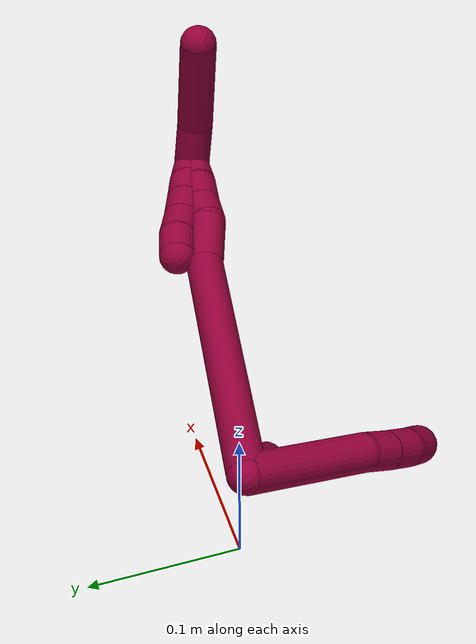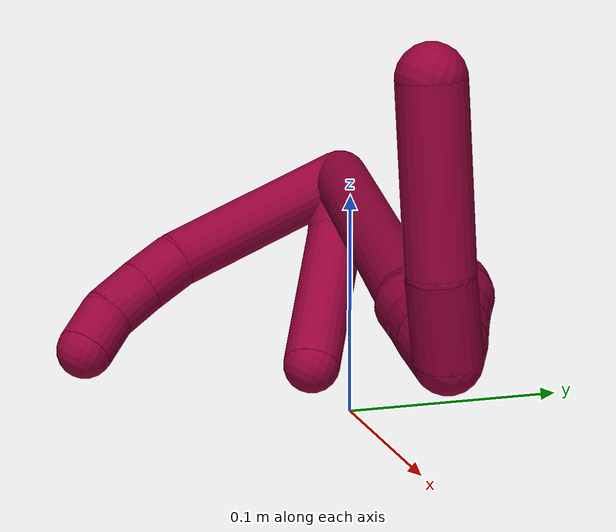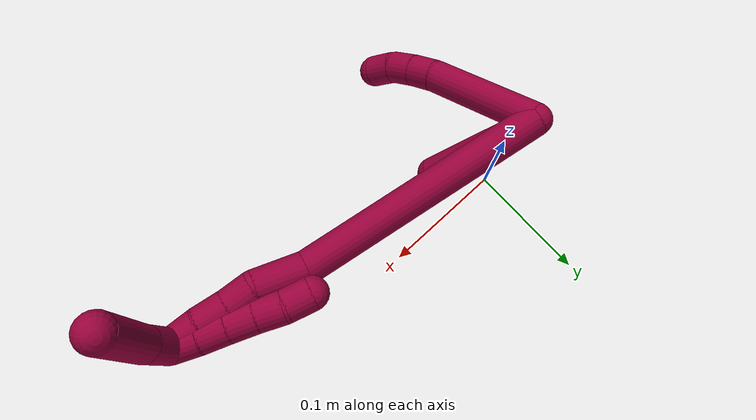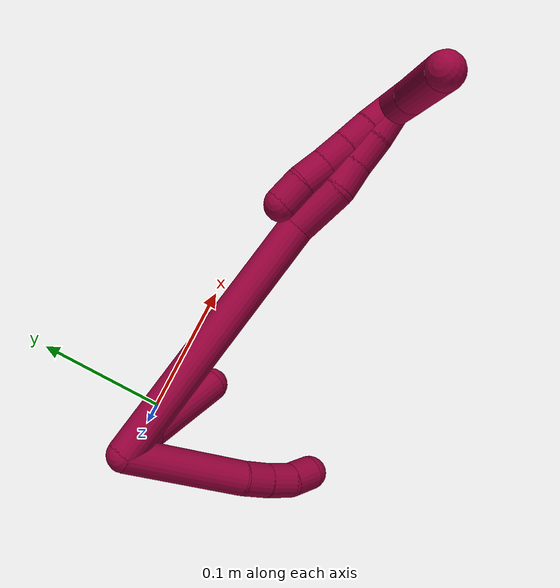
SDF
<sdf version="1.7">
 <world name="default">
  <model name="8">
   <static>0</static>
   <link name="8">
    <collision name="collision-cylinder-e_1_2_8">
     <pose>0.010499 -0.027687 -0.033167 2.446 0.238395 0.638137</pose>
     <geometry><cylinder><radius>0.0125</radius><length>0.088925</length></cylinder></geometry>
     <surface>
      <friction><ode><mu>1.16</mu><mu2>1.16</mu2><slip1>0</slip1><slip2>0</slip2></ode></friction>
      <contact><ode><kp>1e+06</kp><kd>1</kd><max_vel>0</max_vel><min_depth>0.001</min_depth></ode></contact>
     </surface>
    </collision>
    <visual name="visual-cylinder-e_1_2_8">
     <pose>0.010499 -0.027687 -0.033167 2.446 0.238395 0.638137</pose>
     <geometry><cylinder><radius>0.0125</radius><length>0.088925</length></cylinder></geometry>
     <material><ambient>0.584314 0 0.227451 1</ambient></material>
    </visual>
    <collision name="collision-cylinder-e_2_8_9">
     <pose>0.023499 -0.060251 -0.074873 2.62269 0.248978 0.881079</pose>
     <geometry><cylinder><radius>0.0125</radius><length>0.020291</length></cylinder></geometry>
     <surface>
      <friction><ode><mu>1.16</mu><mu2>1.16</mu2><slip1>0</slip1><slip2>0</slip2></ode></friction>
      <contact><ode><kp>1e+06</kp><kd>1</kd><max_vel>0</max_vel><min_depth>0.001</min_depth></ode></contact>
     </surface>
    </collision>
    <visual name="visual-cylinder-e_2_8_9">
     <pose>0.023499 -0.060251 -0.074873 2.62269 0.248978 0.881079</pose>
     <geometry><cylinder><radius>0.0125</radius><length>0.020291</length></cylinder></geometry>
     <material><ambient>0.584314 0 0.227451 1</ambient></material>
    </visual>
    <collision name="collision-cylinder-e_3_9_10">
     <pose>0.029199 -0.069596 -0.092058 2.66458 0.317692 1.16519</pose>
     <geometry><cylinder><radius>0.0125</radius><length>0.020491</length></cylinder></geometry>
     <surface>
      <friction><ode><mu>1.16</mu><mu2>1.16</mu2><slip1>0</slip1><slip2>0</slip2></ode></friction>
      <contact><ode><kp>1e+06</kp><kd>1</kd><max_vel>0</max_vel><min_depth>0.001</min_depth></ode></contact>
     </surface>
    </collision>
    <visual name="visual-cylinder-e_3_9_10">
     <pose>0.029199 -0.069596 -0.092058 2.66458 0.317692 1.16519</pose>
     <geometry><cylinder><radius>0.0125</radius><length>0.020491</length></cylinder></geometry>
     <material><ambient>0.584314 0 0.227451 1</ambient></material>
    </visual>
    <collision name="collision-cylinder-e_4_10_6">
     <pose>0.03703 -0.075899 -0.109544 2.93704 0.473895 2.33783</pose>
     <geometry><cylinder><radius>0.0125</radius><length>0.020293</length></cylinder></geometry>
     <surface>
      <friction><ode><mu>1.16</mu><mu2>1.16</mu2><slip1>0</slip1><slip2>0</slip2></ode></friction>
      <contact><ode><kp>1e+06</kp><kd>1</kd><max_vel>0</max_vel><min_depth>0.001</min_depth></ode></contact>
     </surface>
    </collision>
    <visual name="visual-cylinder-e_4_10_6">
     <pose>0.03703 -0.075899 -0.109544 2.93704 0.473895 2.33783</pose>
     <geometry><cylinder><radius>0.0125</radius><length>0.020293</length></cylinder></geometry>
     <material><ambient>0.584314 0 0.227451 1</ambient></material>
    </visual>
    <collision name="collision-cylinder-e_1_2_11">
     <pose>0.007537 0.00308 -0.012526 -2.90046 0.528761 -2.30001</pose>
     <geometry><cylinder><radius>0.0125</radius><length>0.029879</length></cylinder></geometry>
     <surface>
      <friction><ode><mu>1.16</mu><mu2>1.16</mu2><slip1>0</slip1><slip2>0</slip2></ode></friction>
      <contact><ode><kp>1e+06</kp><kd>1</kd><max_vel>0</max_vel><min_depth>0.001</min_depth></ode></contact>
     </surface>
    </collision>
    <visual name="visual-cylinder-e_1_2_11">
     <pose>0.007537 0.00308 -0.012526 -2.90046 0.528761 -2.30001</pose>
     <geometry><cylinder><radius>0.0125</radius><length>0.029879</length></cylinder></geometry>
     <material><ambient>0.584314 0 0.227451 1</ambient></material>
    </visual>
    <collision name="collision-cylinder-e_2_11_5">
     <pose>0.035495 0.009392 -0.053367 -3.02796 0.621788 -2.79119</pose>
     <geometry><cylinder><radius>0.0125</radius><length>0.070121</length></cylinder></geometry>
     <surface>
      <friction><ode><mu>1.16</mu><mu2>1.16</mu2><slip1>0</slip1><slip2>0</slip2></ode></friction>
      <contact><ode><kp>1e+06</kp><kd>1</kd><max_vel>0</max_vel><min_depth>0.001</min_depth></ode></contact>
     </surface>
    </collision>
    <visual name="visual-cylinder-e_2_11_5">
     <pose>0.035495 0.009392 -0.053367 -3.02796 0.621788 -2.79119</pose>
     <geometry><cylinder><radius>0.0125</radius><length>0.070121</length></cylinder></geometry>
     <material><ambient>0.584314 0 0.227451 1</ambient></material>
    </visual>
    <collision name="collision-cylinder-e_1_2_12">
     <pose>0.095578 0.00176 -0.020187 -3.05462 1.36188 -3.03429</pose>
     <geometry><cylinder><radius>0.0125</radius><length>0.195404</length></cylinder></geometry>
     <surface>
      <friction><ode><mu>1.16</mu><mu2>1.16</mu2><slip1>0</slip1><slip2>0</slip2></ode></friction>
      <contact><ode><kp>1e+06</kp><kd>1</kd><max_vel>0</max_vel><min_depth>0.001</min_depth></ode></contact>
     </surface>
    </collision>
    <visual name="visual-cylinder-e_1_2_12">
     <pose>0.095578 0.00176 -0.020187 -3.05462 1.36188 -3.03429</pose>
     <geometry><cylinder><radius>0.0125</radius><length>0.195404</length></cylinder></geometry>
     <material><ambient>0.584314 0 0.227451 1</ambient></material>
    </visual>
    <collision name="collision-cylinder-e_2_12_13">
     <pose>0.209439 -0.001018 -0.042027 1.92019 1.31254 1.6662</pose>
     <geometry><cylinder><radius>0.0125</radius><length>0.037822</length></cylinder></geometry>
     <surface>
      <friction><ode><mu>1.16</mu><mu2>1.16</mu2><slip1>0</slip1><slip2>0</slip2></ode></friction>
      <contact><ode><kp>1e+06</kp><kd>1</kd><max_vel>0</max_vel><min_depth>0.001</min_depth></ode></contact>
     </surface>
    </collision>
    <visual name="visual-cylinder-e_2_12_13">
     <pose>0.209439 -0.001018 -0.042027 1.92019 1.31254 1.6662</pose>
     <geometry><cylinder><radius>0.0125</radius><length>0.037822</length></cylinder></geometry>
     <material><ambient>0.584314 0 0.227451 1</ambient></material>
    </visual>
    <collision name="collision-cylinder-e_3_13_14">
     <pose>0.237961 -0.004744 -0.045629 -2.747 1.3675 -2.66048</pose>
     <geometry><cylinder><radius>0.0125</radius><length>0.020907</length></cylinder></geometry>
     <surface>
      <friction><ode><mu>1.16</mu><mu2>1.16</mu2><slip1>0</slip1><slip2>0</slip2></ode></friction>
      <contact><ode><kp>1e+06</kp><kd>1</kd><max_vel>0</max_vel><min_depth>0.001</min_depth></ode></contact>
     </surface>
    </collision>
    <visual name="visual-cylinder-e_3_13_14">
     <pose>0.237961 -0.004744 -0.045629 -2.747 1.3675 -2.66048</pose>
     <geometry><cylinder><radius>0.0125</radius><length>0.020907</length></cylinder></geometry>
     <material><ambient>0.584314 0 0.227451 1</ambient></material>
    </visual>
    <collision name="collision-cylinder-e_4_14_15">
     <pose>0.259208 -0.003995 -0.049486 3.10937 1.399 3.1033</pose>
     <geometry><cylinder><radius>0.0125</radius><length>0.022346</length></cylinder></geometry>
     <surface>
      <friction><ode><mu>1.16</mu><mu2>1.16</mu2><slip1>0</slip1><slip2>0</slip2></ode></friction>
      <contact><ode><kp>1e+06</kp><kd>1</kd><max_vel>0</max_vel><min_depth>0.001</min_depth></ode></contact>
     </surface>
    </collision>
    <visual name="visual-cylinder-e_4_14_15">
     <pose>0.259208 -0.003995 -0.049486 3.10937 1.399 3.1033</pose>
     <geometry><cylinder><radius>0.0125</radius><length>0.022346</length></cylinder></geometry>
     <material><ambient>0.584314 0 0.227451 1</ambient></material>
    </visual>
    <collision name="collision-cylinder-e_5_15_1">
     <pose>0.281685 -0.002885 -0.053722 -2.67525 1.34748 -2.56332</pose>
     <geometry><cylinder><radius>0.0125</radius><length>0.023521</length></cylinder></geometry>
     <surface>
      <friction><ode><mu>1.16</mu><mu2>1.16</mu2><slip1>0</slip1><slip2>0</slip2></ode></friction>
      <contact><ode><kp>1e+06</kp><kd>1</kd><max_vel>0</max_vel><min_depth>0.001</min_depth></ode></contact>
     </surface>
    </collision>
    <visual name="visual-cylinder-e_5_15_1">
     <pose>0.281685 -0.002885 -0.053722 -2.67525 1.34748 -2.56332</pose>
     <geometry><cylinder><radius>0.0125</radius><length>0.023521</length></cylinder></geometry>
     <material><ambient>0.584314 0 0.227451 1</ambient></material>
    </visual>
    <collision name="collision-cylinder-e_1_1_16">
     <pose>0.283943 0.000374 -0.052761 -0.56601 -1.17079 0.380888</pose>
     <geometry><cylinder><radius>0.0125</radius><length>0.02</length></cylinder></geometry>
     <surface>
      <friction><ode><mu>1.16</mu><mu2>1.16</mu2><slip1>0</slip1><slip2>0</slip2></ode></friction>
      <contact><ode><kp>1e+06</kp><kd>1</kd><max_vel>0</max_vel><min_depth>0.001</min_depth></ode></contact>
     </surface>
    </collision>
    <visual name="visual-cylinder-e_1_1_16">
     <pose>0.283943 0.000374 -0.052761 -0.56601 -1.17079 0.380888</pose>
     <geometry><cylinder><radius>0.0125</radius><length>0.02</length></cylinder></geometry>
     <material><ambient>0.584314 0 0.227451 1</ambient></material>
    </visual>
    <collision name="collision-cylinder-e_2_16_17">
     <pose>0.265296 0.004179 -0.046644 -0.544989 -1.23341 0.391161</pose>
     <geometry><cylinder><radius>0.0125</radius><length>0.02</length></cylinder></geometry>
     <surface>
      <friction><ode><mu>1.16</mu><mu2>1.16</mu2><slip1>0</slip1><slip2>0</slip2></ode></friction>
      <contact><ode><kp>1e+06</kp><kd>1</kd><max_vel>0</max_vel><min_depth>0.001</min_depth></ode></contact>
     </surface>
    </collision>
    <visual name="visual-cylinder-e_2_16_17">
     <pose>0.265296 0.004179 -0.046644 -0.544989 -1.23341 0.391161</pose>
     <geometry><cylinder><radius>0.0125</radius><length>0.02</length></cylinder></geometry>
     <material><ambient>0.584314 0 0.227451 1</ambient></material>
    </visual>
    <collision name="collision-cylinder-e_3_17_18">
     <pose>0.246443 0.007841 -0.041068 -0.616865 -1.22761 0.441647</pose>
     <geometry><cylinder><radius>0.0125</radius><length>0.02</length></cylinder></geometry>
     <surface>
      <friction><ode><mu>1.16</mu><mu2>1.16</mu2><slip1>0</slip1><slip2>0</slip2></ode></friction>
      <contact><ode><kp>1e+06</kp><kd>1</kd><max_vel>0</max_vel><min_depth>0.001</min_depth></ode></contact>
     </surface>
    </collision>
    <visual name="visual-cylinder-e_3_17_18">
     <pose>0.246443 0.007841 -0.041068 -0.616865 -1.22761 0.441647</pose>
     <geometry><cylinder><radius>0.0125</radius><length>0.02</length></cylinder></geometry>
     <material><ambient>0.584314 0 0.227451 1</ambient></material>
    </visual>
    <collision name="collision-cylinder-e_4_18_19">
     <pose>0.227839 0.011904 -0.034989 -0.565393 -1.16478 0.378042</pose>
     <geometry><cylinder><radius>0.0125</radius><length>0.02</length></cylinder></geometry>
     <surface>
      <friction><ode><mu>1.16</mu><mu2>1.16</mu2><slip1>0</slip1><slip2>0</slip2></ode></friction>
      <contact><ode><kp>1e+06</kp><kd>1</kd><max_vel>0</max_vel><min_depth>0.001</min_depth></ode></contact>
     </surface>
    </collision>
    <visual name="visual-cylinder-e_4_18_19">
     <pose>0.227839 0.011904 -0.034989 -0.565393 -1.16478 0.378042</pose>
     <geometry><cylinder><radius>0.0125</radius><length>0.02</length></cylinder></geometry>
     <material><ambient>0.584314 0 0.227451 1</ambient></material>
    </visual>
    <collision name="collision-cylinder-e_5_19_4">
     <pose>0.208878 0.01532 -0.029989 -0.663075 -1.35795 0.541924</pose>
     <geometry><cylinder><radius>0.0125</radius><length>0.02</length></cylinder></geometry>
     <surface>
      <friction><ode><mu>1.16</mu><mu2>1.16</mu2><slip1>0</slip1><slip2>0</slip2></ode></friction>
      <contact><ode><kp>1e+06</kp><kd>1</kd><max_vel>0</max_vel><min_depth>0.001</min_depth></ode></contact>
     </surface>
    </collision>
    <visual name="visual-cylinder-e_5_19_4">
     <pose>0.208878 0.01532 -0.029989 -0.663075 -1.35795 0.541924</pose>
     <geometry><cylinder><radius>0.0125</radius><length>0.02</length></cylinder></geometry>
     <material><ambient>0.584314 0 0.227451 1</ambient></material>
    </visual>
    <collision name="collision-cylinder-e_1_1_20">
     <pose>0.298295 -0.010936 -0.043544 0.635467 0.319566 0.105902</pose>
     <geometry><cylinder><radius>0.0125</radius><length>0.032731</length></cylinder></geometry>
     <surface>
      <friction><ode><mu>1.16</mu><mu2>1.16</mu2><slip1>0</slip1><slip2>0</slip2></ode></friction>
      <contact><ode><kp>1e+06</kp><kd>1</kd><max_vel>0</max_vel><min_depth>0.001</min_depth></ode></contact>
     </surface>
    </collision>
    <visual name="visual-cylinder-e_1_1_20">
     <pose>0.298295 -0.010936 -0.043544 0.635467 0.319566 0.105902</pose>
     <geometry><cylinder><radius>0.0125</radius><length>0.032731</length></cylinder></geometry>
     <material><ambient>0.584314 0 0.227451 1</ambient></material>
    </visual>
    <collision name="collision-cylinder-e_2_20_3">
     <pose>0.308646 -0.037576 -0.002742 0.551748 0.155534 0.044112</pose>
     <geometry><cylinder><radius>0.0125</radius><length>0.067269</length></cylinder></geometry>
     <surface>
      <friction><ode><mu>1.16</mu><mu2>1.16</mu2><slip1>0</slip1><slip2>0</slip2></ode></friction>
      <contact><ode><kp>1e+06</kp><kd>1</kd><max_vel>0</max_vel><min_depth>0.001</min_depth></ode></contact>
     </surface>
    </collision>
    <visual name="visual-cylinder-e_2_20_3">
     <pose>0.308646 -0.037576 -0.002742 0.551748 0.155534 0.044112</pose>
     <geometry><cylinder><radius>0.0125</radius><length>0.067269</length></cylinder></geometry>
     <material><ambient>0.584314 0 0.227451 1</ambient></material>
    </visual>
    <collision name="collision-sphere-3">
     <pose>0.313856 -0.054993 0.025555 0 -0 0</pose>
     <geometry><sphere><radius>0.0125</radius></sphere></geometry>
     <surface>
      <friction><ode><mu>1.16</mu><mu2>1.16</mu2><slip1>0</slip1><slip2>0</slip2></ode></friction>
      <contact><ode><kp>1e+06</kp><kd>1</kd><max_vel>0</max_vel><min_depth>0.001</min_depth></ode></contact>
     </surface>
    </collision>
    <visual name="visual-sphere-3">
     <pose>0.313856 -0.054993 0.025555 0 -0 0</pose>
     <geometry><sphere><radius>0.0125</radius></sphere></geometry>
     <material><ambient>0.584314 0 0.227451 1</ambient></material>
    </visual>
    <collision name="collision-sphere-20">
     <pose>0.303436 -0.020158 -0.03104 0 -0 0</pose>
     <geometry><sphere><radius>0.0125</radius></sphere></geometry>
     <surface>
      <friction><ode><mu>1.16</mu><mu2>1.16</mu2><slip1>0</slip1><slip2>0</slip2></ode></friction>
      <contact><ode><kp>1e+06</kp><kd>1</kd><max_vel>0</max_vel><min_depth>0.001</min_depth></ode></contact>
     </surface>
    </collision>
    <visual name="visual-sphere-20">
     <pose>0.303436 -0.020158 -0.03104 0 -0 0</pose>
     <geometry><sphere><radius>0.0125</radius></sphere></geometry>
     <material><ambient>0.584314 0 0.227451 1</ambient></material>
    </visual>
    <collision name="collision-sphere-4">
     <pose>0.199103 0.01662 -0.028324 0 -0 0</pose>
     <geometry><sphere><radius>0.0125</radius></sphere></geometry>
     <surface>
      <friction><ode><mu>1.16</mu><mu2>1.16</mu2><slip1>0</slip1><slip2>0</slip2></ode></friction>
      <contact><ode><kp>1e+06</kp><kd>1</kd><max_vel>0</max_vel><min_depth>0.001</min_depth></ode></contact>
     </surface>
    </collision>
    <visual name="visual-sphere-4">
     <pose>0.199103 0.01662 -0.028324 0 -0 0</pose>
     <geometry><sphere><radius>0.0125</radius></sphere></geometry>
     <material><ambient>0.584314 0 0.227451 1</ambient></material>
    </visual>
    <collision name="collision-sphere-11">
     <pose>0.015073 0.006161 -0.025052 0 -0 0</pose>
     <geometry><sphere><radius>0.0125</radius></sphere></geometry>
     <surface>
      <friction><ode><mu>1.16</mu><mu2>1.16</mu2><slip1>0</slip1><slip2>0</slip2></ode></friction>
      <contact><ode><kp>1e+06</kp><kd>1</kd><max_vel>0</max_vel><min_depth>0.001</min_depth></ode></contact>
     </surface>
    </collision>
    <visual name="visual-sphere-11">
     <pose>0.015073 0.006161 -0.025052 0 -0 0</pose>
     <geometry><sphere><radius>0.0125</radius></sphere></geometry>
     <material><ambient>0.584314 0 0.227451 1</ambient></material>
    </visual>
    <collision name="collision-sphere-6">
     <pose>0.041661 -0.077733 -0.118384 0 -0 0</pose>
     <geometry><sphere><radius>0.0125</radius></sphere></geometry>
     <surface>
      <friction><ode><mu>1.16</mu><mu2>1.16</mu2><slip1>0</slip1><slip2>0</slip2></ode></friction>
      <contact><ode><kp>1e+06</kp><kd>1</kd><max_vel>0</max_vel><min_depth>0.001</min_depth></ode></contact>
     </surface>
    </collision>
    <visual name="visual-sphere-6">
     <pose>0.041661 -0.077733 -0.118384 0 -0 0</pose>
     <geometry><sphere><radius>0.0125</radius></sphere></geometry>
     <material><ambient>0.584314 0 0.227451 1</ambient></material>
    </visual>
    <collision name="collision-sphere-10">
     <pose>0.0324 -0.074065 -0.100704 0 -0 0</pose>
     <geometry><sphere><radius>0.0125</radius></sphere></geometry>
     <surface>
      <friction><ode><mu>1.16</mu><mu2>1.16</mu2><slip1>0</slip1><slip2>0</slip2></ode></friction>
      <contact><ode><kp>1e+06</kp><kd>1</kd><max_vel>0</max_vel><min_depth>0.001</min_depth></ode></contact>
     </surface>
    </collision>
    <visual name="visual-sphere-10">
     <pose>0.0324 -0.074065 -0.100704 0 -0 0</pose>
     <geometry><sphere><radius>0.0125</radius></sphere></geometry>
     <material><ambient>0.584314 0 0.227451 1</ambient></material>
    </visual>
    <collision name="collision-sphere-9">
     <pose>0.025999 -0.065128 -0.083411 0 -0 0</pose>
     <geometry><sphere><radius>0.0125</radius></sphere></geometry>
     <surface>
      <friction><ode><mu>1.16</mu><mu2>1.16</mu2><slip1>0</slip1><slip2>0</slip2></ode></friction>
      <contact><ode><kp>1e+06</kp><kd>1</kd><max_vel>0</max_vel><min_depth>0.001</min_depth></ode></contact>
     </surface>
    </collision>
    <visual name="visual-sphere-9">
     <pose>0.025999 -0.065128 -0.083411 0 -0 0</pose>
     <geometry><sphere><radius>0.0125</radius></sphere></geometry>
     <material><ambient>0.584314 0 0.227451 1</ambient></material>
    </visual>
    <collision name="collision-sphere-2">
     <geometry><sphere><radius>0.0125</radius></sphere></geometry>
     <surface>
      <friction><ode><mu>1.16</mu><mu2>1.16</mu2><slip1>0</slip1><slip2>0</slip2></ode></friction>
      <contact><ode><kp>1e+06</kp><kd>1</kd><max_vel>0</max_vel><min_depth>0.001</min_depth></ode></contact>
     </surface>
    </collision>
    <visual name="visual-sphere-2">
     <geometry><sphere><radius>0.0125</radius></sphere></geometry>
     <material><ambient>0.584314 0 0.227451 1</ambient></material>
    </visual>
    <collision name="collision-sphere-19">
     <pose>0.218652 0.01402 -0.031654 0 -0 0</pose>
     <geometry><sphere><radius>0.0125</radius></sphere></geometry>
     <surface>
      <friction><ode><mu>1.16</mu><mu2>1.16</mu2><slip1>0</slip1><slip2>0</slip2></ode></friction>
      <contact><ode><kp>1e+06</kp><kd>1</kd><max_vel>0</max_vel><min_depth>0.001</min_depth></ode></contact>
     </surface>
    </collision>
    <visual name="visual-sphere-19">
     <pose>0.218652 0.01402 -0.031654 0 -0 0</pose>
     <geometry><sphere><radius>0.0125</radius></sphere></geometry>
     <material><ambient>0.584314 0 0.227451 1</ambient></material>
    </visual>
    <collision name="collision-sphere-8">
     <pose>0.020999 -0.055375 -0.066335 0 -0 0</pose>
     <geometry><sphere><radius>0.0125</radius></sphere></geometry>
     <surface>
      <friction><ode><mu>1.16</mu><mu2>1.16</mu2><slip1>0</slip1><slip2>0</slip2></ode></friction>
      <contact><ode><kp>1e+06</kp><kd>1</kd><max_vel>0</max_vel><min_depth>0.001</min_depth></ode></contact>
     </surface>
    </collision>
    <visual name="visual-sphere-8">
     <pose>0.020999 -0.055375 -0.066335 0 -0 0</pose>
     <geometry><sphere><radius>0.0125</radius></sphere></geometry>
     <material><ambient>0.584314 0 0.227451 1</ambient></material>
    </visual>
    <collision name="collision-sphere-5">
     <pose>0.055918 0.012624 -0.081682 0 -0 0</pose>
     <geometry><sphere><radius>0.0125</radius></sphere></geometry>
     <surface>
      <friction><ode><mu>1.16</mu><mu2>1.16</mu2><slip1>0</slip1><slip2>0</slip2></ode></friction>
      <contact><ode><kp>1e+06</kp><kd>1</kd><max_vel>0</max_vel><min_depth>0.001</min_depth></ode></contact>
     </surface>
    </collision>
    <visual name="visual-sphere-5">
     <pose>0.055918 0.012624 -0.081682 0 -0 0</pose>
     <geometry><sphere><radius>0.0125</radius></sphere></geometry>
     <material><ambient>0.584314 0 0.227451 1</ambient></material>
    </visual>
    <collision name="collision-sphere-12">
     <pose>0.191156 0.00352 -0.040374 0 -0 0</pose>
     <geometry><sphere><radius>0.0125</radius></sphere></geometry>
     <surface>
      <friction><ode><mu>1.16</mu><mu2>1.16</mu2><slip1>0</slip1><slip2>0</slip2></ode></friction>
      <contact><ode><kp>1e+06</kp><kd>1</kd><max_vel>0</max_vel><min_depth>0.001</min_depth></ode></contact>
     </surface>
    </collision>
    <visual name="visual-sphere-12">
     <pose>0.191156 0.00352 -0.040374 0 -0 0</pose>
     <geometry><sphere><radius>0.0125</radius></sphere></geometry>
     <material><ambient>0.584314 0 0.227451 1</ambient></material>
    </visual>
    <collision name="collision-sphere-13">
     <pose>0.227723 -0.005556 -0.04368 0 -0 0</pose>
     <geometry><sphere><radius>0.0125</radius></sphere></geometry>
     <surface>
      <friction><ode><mu>1.16</mu><mu2>1.16</mu2><slip1>0</slip1><slip2>0</slip2></ode></friction>
      <contact><ode><kp>1e+06</kp><kd>1</kd><max_vel>0</max_vel><min_depth>0.001</min_depth></ode></contact>
     </surface>
    </collision>
    <visual name="visual-sphere-13">
     <pose>0.227723 -0.005556 -0.04368 0 -0 0</pose>
     <geometry><sphere><radius>0.0125</radius></sphere></geometry>
     <material><ambient>0.584314 0 0.227451 1</ambient></material>
    </visual>
    <collision name="collision-sphere-14">
     <pose>0.248199 -0.003933 -0.047577 0 -0 0</pose>
     <geometry><sphere><radius>0.0125</radius></sphere></geometry>
     <surface>
      <friction><ode><mu>1.16</mu><mu2>1.16</mu2><slip1>0</slip1><slip2>0</slip2></ode></friction>
      <contact><ode><kp>1e+06</kp><kd>1</kd><max_vel>0</max_vel><min_depth>0.001</min_depth></ode></contact>
     </surface>
    </collision>
    <visual name="visual-sphere-14">
     <pose>0.248199 -0.003933 -0.047577 0 -0 0</pose>
     <geometry><sphere><radius>0.0125</radius></sphere></geometry>
     <material><ambient>0.584314 0 0.227451 1</ambient></material>
    </visual>
    <collision name="collision-sphere-15">
     <pose>0.270217 -0.004056 -0.051395 0 -0 0</pose>
     <geometry><sphere><radius>0.0125</radius></sphere></geometry>
     <surface>
      <friction><ode><mu>1.16</mu><mu2>1.16</mu2><slip1>0</slip1><slip2>0</slip2></ode></friction>
      <contact><ode><kp>1e+06</kp><kd>1</kd><max_vel>0</max_vel><min_depth>0.001</min_depth></ode></contact>
     </surface>
    </collision>
    <visual name="visual-sphere-15">
     <pose>0.270217 -0.004056 -0.051395 0 -0 0</pose>
     <geometry><sphere><radius>0.0125</radius></sphere></geometry>
     <material><ambient>0.584314 0 0.227451 1</ambient></material>
    </visual>
    <collision name="collision-sphere-1">
     <pose>0.293153 -0.001714 -0.056048 0 -0 0</pose>
     <geometry><sphere><radius>0.0125</radius></sphere></geometry>
     <surface>
      <friction><ode><mu>1.16</mu><mu2>1.16</mu2><slip1>0</slip1><slip2>0</slip2></ode></friction>
      <contact><ode><kp>1e+06</kp><kd>1</kd><max_vel>0</max_vel><min_depth>0.001</min_depth></ode></contact>
     </surface>
    </collision>
    <visual name="visual-sphere-1">
     <pose>0.293153 -0.001714 -0.056048 0 -0 0</pose>
     <geometry><sphere><radius>0.0125</radius></sphere></geometry>
     <material><ambient>0.584314 0 0.227451 1</ambient></material>
    </visual>
    <collision name="collision-sphere-18">
     <pose>0.237026 0.009788 -0.038323 0 -0 0</pose>
     <geometry><sphere><radius>0.0125</radius></sphere></geometry>
     <surface>
      <friction><ode><mu>1.16</mu><mu2>1.16</mu2><slip1>0</slip1><slip2>0</slip2></ode></friction>
      <contact><ode><kp>1e+06</kp><kd>1</kd><max_vel>0</max_vel><min_depth>0.001</min_depth></ode></contact>
     </surface>
    </collision>
    <visual name="visual-sphere-18">
     <pose>0.237026 0.009788 -0.038323 0 -0 0</pose>
     <geometry><sphere><radius>0.0125</radius></sphere></geometry>
     <material><ambient>0.584314 0 0.227451 1</ambient></material>
    </visual>
    <collision name="collision-sphere-16">
     <pose>0.274732 0.002463 -0.049474 0 -0 0</pose>
     <geometry><sphere><radius>0.0125</radius></sphere></geometry>
     <surface>
      <friction><ode><mu>1.16</mu><mu2>1.16</mu2><slip1>0</slip1><slip2>0</slip2></ode></friction>
      <contact><ode><kp>1e+06</kp><kd>1</kd><max_vel>0</max_vel><min_depth>0.001</min_depth></ode></contact>
     </surface>
    </collision>
    <visual name="visual-sphere-16">
     <pose>0.274732 0.002463 -0.049474 0 -0 0</pose>
     <geometry><sphere><radius>0.0125</radius></sphere></geometry>
     <material><ambient>0.584314 0 0.227451 1</ambient></material>
    </visual>
    <collision name="collision-sphere-17">
     <pose>0.25586 0.005895 -0.043813 0 -0 0</pose>
     <geometry><sphere><radius>0.0125</radius></sphere></geometry>
     <surface>
      <friction><ode><mu>1.16</mu><mu2>1.16</mu2><slip1>0</slip1><slip2>0</slip2></ode></friction>
      <contact><ode><kp>1e+06</kp><kd>1</kd><max_vel>0</max_vel><min_depth>0.001</min_depth></ode></contact>
     </surface>
    </collision>
    <visual name="visual-sphere-17">
     <pose>0.25586 0.005895 -0.043813 0 -0 0</pose>
     <geometry><sphere><radius>0.0125</radius></sphere></geometry>
     <material><ambient>0.584314 0 0.227451 1</ambient></material>
    </visual>
    <inertial>
     <pose>0.139518 -0.010593 -0.036361 0 -0 0</pose>
     <mass>0.75</mass>
     <inertia>
      <ixx>-3.1e-05</ixx>
      <ixy>0</ixy>
      <ixz>0</ixz>
      <iyy>0.000685</iyy>
      <iyz>0</iyz>
      <izz>-0.000631</izz>
     </inertia>
    </inertial>
   </link>
   <pose>-0.027212 0.003722 0.102872 -0.49188 -0.149122 -0.081899</pose>
  </model>
 </world>
</sdf>
